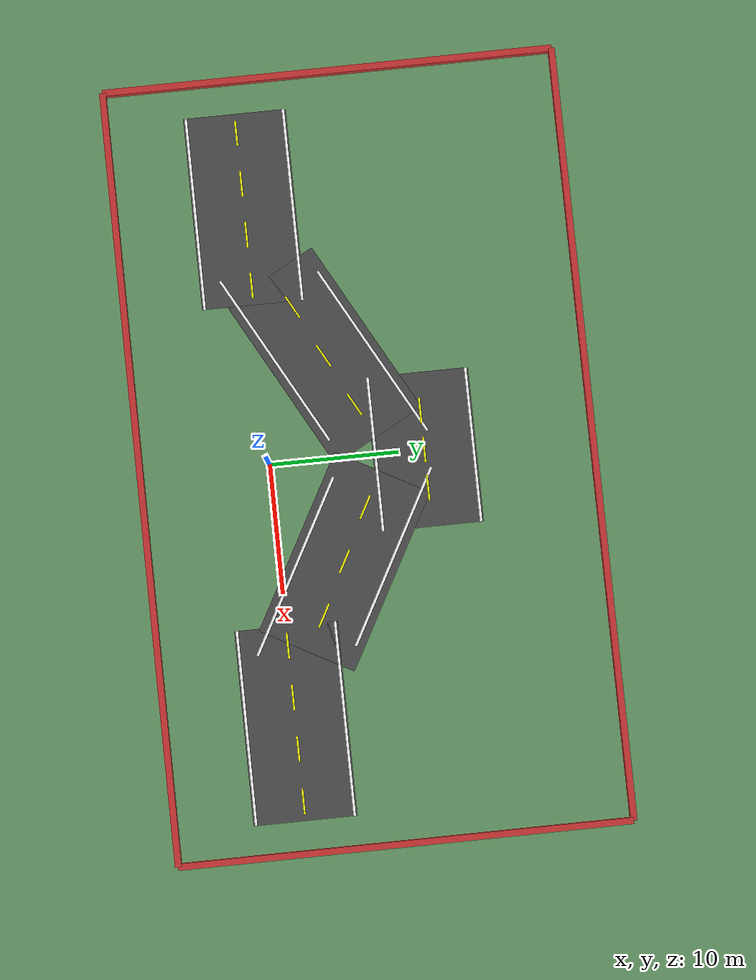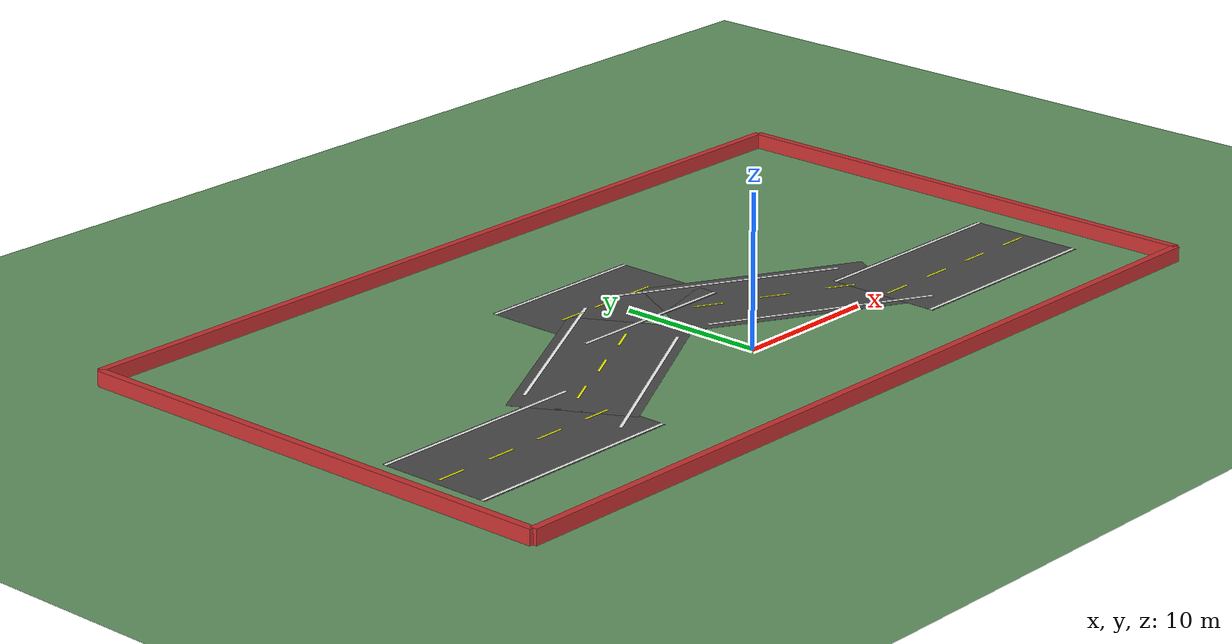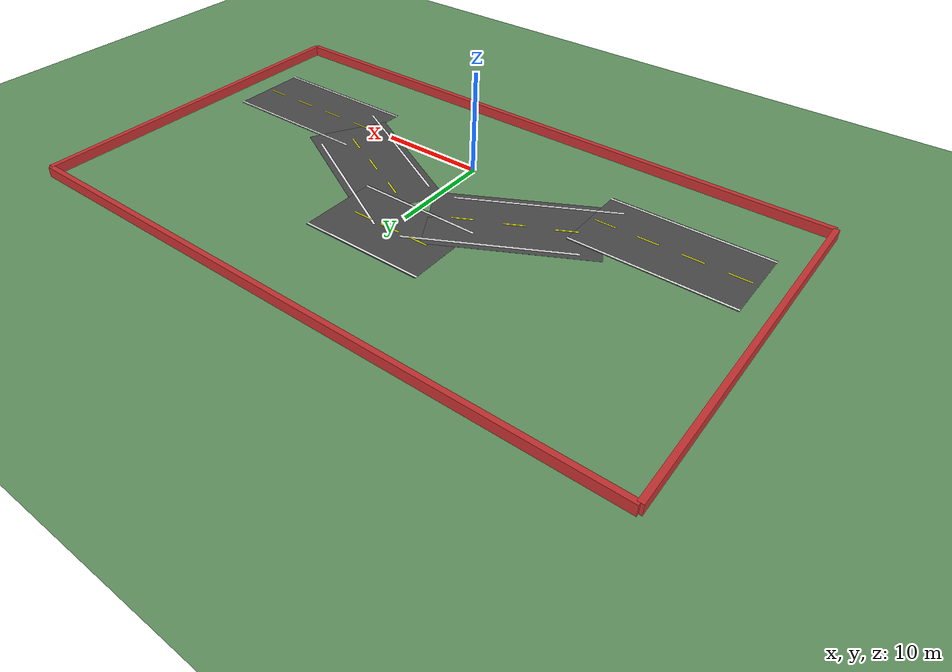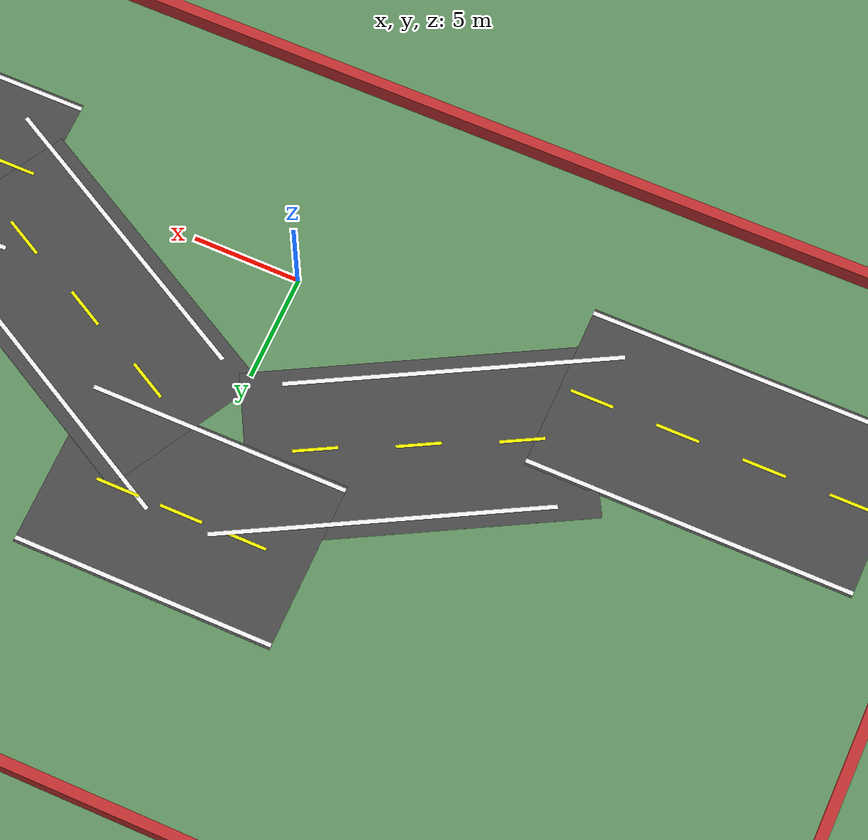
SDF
<?xml version="1.0" ?>
<sdf version="1.9">
  <world name="curved_track">

    <!-- Physics -->
    <physics name="1ms" type="ignored">
      <max_step_size>0.001</max_step_size>
      <real_time_factor>1.0</real_time_factor>
    </physics>

    <!-- Plugins -->
    <plugin
      filename="gz-sim-physics-system"
      name="gz::sim::systems::Physics">
    </plugin>
    <plugin
      filename="gz-sim-user-commands-system"
      name="gz::sim::systems::UserCommands">
    </plugin>
    <plugin
      filename="gz-sim-scene-broadcaster-system"
      name="gz::sim::systems::SceneBroadcaster">
    </plugin>
    <plugin
      filename="gz-sim-sensors-system"
      name="gz::sim::systems::Sensors">
      <render_engine>ogre2</render_engine>
    </plugin>

    <!-- Lighting -->
    <light type="directional" name="sun">
      <cast_shadows>true</cast_shadows>
      <pose>0 0 10 0 0 0</pose>
      <diffuse>0.8 0.8 0.8 1</diffuse>
      <specular>0.2 0.2 0.2 1</specular>
      <attenuation>
        <range>1000</range>
        <constant>0.9</constant>
        <linear>0.01</linear>
        <quadratic>0.001</quadratic>
      </attenuation>
      <direction>-0.5 0.1 -0.9</direction>
    </light>

    <!-- Ground Plane (grass) -->
    <model name="ground_plane">
      <static>true</static>
      <link name="link">
        <collision name="collision">
          <geometry>
            <plane>
              <normal>0 0 1</normal>
              <size>200 200</size>
            </plane>
          </geometry>
        </collision>
        <visual name="visual">
          <geometry>
            <plane>
              <normal>0 0 1</normal>
              <size>200 200</size>
            </plane>
          </geometry>
          <material>
            <ambient>0.3 0.5 0.3 1</ambient>
            <diffuse>0.4 0.6 0.4 1</diffuse>
            <specular>0.01 0.01 0.01 1</specular>
          </material>
        </visual>
      </link>
    </model>

    <!-- CURVED TRACK WITH S-BENDS   -->

    <!-- Segment 1: Straight section (entry) -->
    <model name="road_segment_1">
      <static>true</static>
      <pose>-20 0 0.01 0 0 0</pose>
      <link name="link">
        <visual name="visual">
          <geometry>
            <box>
              <size>15 8 0.01</size>
            </box>
          </geometry>
          <material>
            <ambient>0.2 0.2 0.2 1</ambient>
            <diffuse>0.3 0.3 0.3 1</diffuse>
            <specular>0.1 0.1 0.1 1</specular>
          </material>
        </visual>
      </link>
    </model>

    <!-- Segment 2: Left curve -->
    <model name="road_segment_2">
      <static>true</static>
      <pose>-8 5 0.01 0 0 0.5</pose>
      <link name="link">
        <visual name="visual">
          <geometry>
            <box>
              <size>15 8 0.01</size>
            </box>
          </geometry>
          <material>
            <ambient>0.2 0.2 0.2 1</ambient>
            <diffuse>0.3 0.3 0.3 1</diffuse>
            <specular>0.1 0.1 0.1 1</specular>
          </material>
        </visual>
      </link>
    </model>

    <!-- Segment 3: Transition section -->
    <model name="road_segment_3">
      <static>true</static>
      <pose>0 12 0.01 0 0 0</pose>
      <link name="link">
        <visual name="visual">
          <geometry>
            <box>
              <size>12 8 0.01</size>
            </box>
          </geometry>
          <material>
            <ambient>0.2 0.2 0.2 1</ambient>
            <diffuse>0.3 0.3 0.3 1</diffuse>
            <specular>0.1 0.1 0.1 1</specular>
          </material>
        </visual>
      </link>
    </model>

    <!-- Segment 4: Right curve -->
    <model name="road_segment_4">
      <static>true</static>
      <pose>8 5 0.01 0 0 -0.5</pose>
      <link name="link">
        <visual name="visual">
          <geometry>
            <box>
              <size>15 8 0.01</size>
            </box>
          </geometry>
          <material>
            <ambient>0.2 0.2 0.2 1</ambient>
            <diffuse>0.3 0.3 0.3 1</diffuse>
            <specular>0.1 0.1 0.1 1</specular>
          </material>
        </visual>
      </link>
    </model>

    <!-- Segment 5: Straight section (exit) -->
    <model name="road_segment_5">
      <static>true</static>
      <pose>20 0 0.01 0 0 0</pose>
      <link name="link">
        <visual name="visual">
          <geometry>
            <box>
              <size>15 8 0.01</size>
            </box>
          </geometry>
          <material>
            <ambient>0.2 0.2 0.2 1</ambient>
            <diffuse>0.3 0.3 0.3 1</diffuse>
            <specular>0.1 0.1 0.1 1</specular>
          </material>
        </visual>
      </link>
    </model>

    <!-- LANE MARKINGS - Segment 1   -->

    <!-- Left edge (white solid) -->
    <model name="lane_seg1_left">
      <static>true</static>
      <pose>-20 3.8 0.02 0 0 0</pose>
      <link name="link">
        <visual name="visual">
          <geometry>
            <box>
              <size>15 0.2 0.01</size>
            </box>
          </geometry>
          <material>
            <ambient>1 1 1 1</ambient>
            <diffuse>1 1 1 1</diffuse>
          </material>
        </visual>
      </link>
    </model>

    <!-- Right edge (white solid) -->
    <model name="lane_seg1_right">
      <static>true</static>
      <pose>-20 -3.8 0.02 0 0 0</pose>
      <link name="link">
        <visual name="visual">
          <geometry>
            <box>
              <size>15 0.2 0.01</size>
            </box>
          </geometry>
          <material>
            <ambient>1 1 1 1</ambient>
            <diffuse>1 1 1 1</diffuse>
          </material>
        </visual>
      </link>
    </model>

    <!-- Center dashed yellow lines -->
    <model name="lane_seg1_center_1">
      <static>true</static>
      <pose>-26 0 0.02 0 0 0</pose>
      <link name="link">
        <visual name="visual">
          <geometry>
            <box>
              <size>2 0.15 0.01</size>
            </box>
          </geometry>
          <material>
            <ambient>1 1 0 1</ambient>
            <diffuse>1 1 0 1</diffuse>
          </material>
        </visual>
      </link>
    </model>

    <model name="lane_seg1_center_2">
      <static>true</static>
      <pose>-22 0 0.02 0 0 0</pose>
      <link name="link">
        <visual name="visual">
          <geometry>
            <box>
              <size>2 0.15 0.01</size>
            </box>
          </geometry>
          <material>
            <ambient>1 1 0 1</ambient>
            <diffuse>1 1 0 1</diffuse>
          </material>
        </visual>
      </link>
    </model>

    <model name="lane_seg1_center_3">
      <static>true</static>
      <pose>-18 0 0.02 0 0 0</pose>
      <link name="link">
        <visual name="visual">
          <geometry>
            <box>
              <size>2 0.15 0.01</size>
            </box>
          </geometry>
          <material>
            <ambient>1 1 0 1</ambient>
            <diffuse>1 1 0 1</diffuse>
          </material>
        </visual>
      </link>
    </model>

    <model name="lane_seg1_center_4">
      <static>true</static>
      <pose>-14 0 0.02 0 0 0</pose>
      <link name="link">
        <visual name="visual">
          <geometry>
            <box>
              <size>2 0.15 0.01</size>
            </box>
          </geometry>
          <material>
            <ambient>1 1 0 1</ambient>
            <diffuse>1 1 0 1</diffuse>
          </material>
        </visual>
      </link>
    </model>

    <!-- LANE MARKINGS - Segment 2   -->
    <!-- (Left curve)                 -->

    <model name="lane_seg2_left">
      <static>true</static>
      <pose>-8 8.8 0.02 0 0 0.5</pose>
      <link name="link">
        <visual name="visual">
          <geometry>
            <box>
              <size>15 0.2 0.01</size>
            </box>
          </geometry>
          <material>
            <ambient>1 1 1 1</ambient>
            <diffuse>1 1 1 1</diffuse>
          </material>
        </visual>
      </link>
    </model>

    <model name="lane_seg2_right">
      <static>true</static>
      <pose>-8 1.2 0.02 0 0 0.5</pose>
      <link name="link">
        <visual name="visual">
          <geometry>
            <box>
              <size>15 0.2 0.01</size>
            </box>
          </geometry>
          <material>
            <ambient>1 1 1 1</ambient>
            <diffuse>1 1 1 1</diffuse>
          </material>
        </visual>
      </link>
    </model>

    <!-- Center markings for curve -->
    <model name="lane_seg2_center_1">
      <static>true</static>
      <pose>-12 3 0.02 0 0 0.5</pose>
      <link name="link">
        <visual name="visual">
          <geometry>
            <box>
              <size>2 0.15 0.01</size>
            </box>
          </geometry>
          <material>
            <ambient>1 1 0 1</ambient>
            <diffuse>1 1 0 1</diffuse>
          </material>
        </visual>
      </link>
    </model>

    <model name="lane_seg2_center_2">
      <static>true</static>
      <pose>-8 5 0.02 0 0 0.5</pose>
      <link name="link">
        <visual name="visual">
          <geometry>
            <box>
              <size>2 0.15 0.01</size>
            </box>
          </geometry>
          <material>
            <ambient>1 1 0 1</ambient>
            <diffuse>1 1 0 1</diffuse>
          </material>
        </visual>
      </link>
    </model>

    <model name="lane_seg2_center_3">
      <static>true</static>
      <pose>-4 7 0.02 0 0 0.5</pose>
      <link name="link">
        <visual name="visual">
          <geometry>
            <box>
              <size>2 0.15 0.01</size>
            </box>
          </geometry>
          <material>
            <ambient>1 1 0 1</ambient>
            <diffuse>1 1 0 1</diffuse>
          </material>
        </visual>
      </link>
    </model>

    <!-- LANE MARKINGS - Segment 3   -->
    <!-- (Transition)                 -->

    <model name="lane_seg3_left">
      <static>true</static>
      <pose>0 15.8 0.02 0 0 0</pose>
      <link name="link">
        <visual name="visual">
          <geometry>
            <box>
              <size>12 0.2 0.01</size>
            </box>
          </geometry>
          <material>
            <ambient>1 1 1 1</ambient>
            <diffuse>1 1 1 1</diffuse>
          </material>
        </visual>
      </link>
    </model>

    <model name="lane_seg3_right">
      <static>true</static>
      <pose>0 8.2 0.02 0 0 0</pose>
      <link name="link">
        <visual name="visual">
          <geometry>
            <box>
              <size>12 0.2 0.01</size>
            </box>
          </geometry>
          <material>
            <ambient>1 1 1 1</ambient>
            <diffuse>1 1 1 1</diffuse>
          </material>
        </visual>
      </link>
    </model>

    <model name="lane_seg3_center_1">
      <static>true</static>
      <pose>-3 12 0.02 0 0 0</pose>
      <link name="link">
        <visual name="visual">
          <geometry>
            <box>
              <size>2 0.15 0.01</size>
            </box>
          </geometry>
          <material>
            <ambient>1 1 0 1</ambient>
            <diffuse>1 1 0 1</diffuse>
          </material>
        </visual>
      </link>
    </model>

    <model name="lane_seg3_center_2">
      <static>true</static>
      <pose>0 12 0.02 0 0 0</pose>
      <link name="link">
        <visual name="visual">
          <geometry>
            <box>
              <size>2 0.15 0.01</size>
            </box>
          </geometry>
          <material>
            <ambient>1 1 0 1</ambient>
            <diffuse>1 1 0 1</diffuse>
          </material>
        </visual>
      </link>
    </model>

    <model name="lane_seg3_center_3">
      <static>true</static>
      <pose>3 12 0.02 0 0 0</pose>
      <link name="link">
        <visual name="visual">
          <geometry>
            <box>
              <size>2 0.15 0.01</size>
            </box>
          </geometry>
          <material>
            <ambient>1 1 0 1</ambient>
            <diffuse>1 1 0 1</diffuse>
          </material>
        </visual>
      </link>
    </model>

    <!-- LANE MARKINGS - Segment 4   -->
    <!-- (Right curve)                -->

    <model name="lane_seg4_left">
      <static>true</static>
      <pose>8 8.8 0.02 0 0 -0.5</pose>
      <link name="link">
        <visual name="visual">
          <geometry>
            <box>
              <size>15 0.2 0.01</size>
            </box>
          </geometry>
          <material>
            <ambient>1 1 1 1</ambient>
            <diffuse>1 1 1 1</diffuse>
          </material>
        </visual>
      </link>
    </model>

    <model name="lane_seg4_right">
      <static>true</static>
      <pose>8 1.2 0.02 0 0 -0.5</pose>
      <link name="link">
        <visual name="visual">
          <geometry>
            <box>
              <size>15 0.2 0.01</size>
            </box>
          </geometry>
          <material>
            <ambient>1 1 1 1</ambient>
            <diffuse>1 1 1 1</diffuse>
          </material>
        </visual>
      </link>
    </model>

    <model name="lane_seg4_center_1">
      <static>true</static>
      <pose>4 7 0.02 0 0 -0.5</pose>
      <link name="link">
        <visual name="visual">
          <geometry>
            <box>
              <size>2 0.15 0.01</size>
            </box>
          </geometry>
          <material>
            <ambient>1 1 0 1</ambient>
            <diffuse>1 1 0 1</diffuse>
          </material>
        </visual>
      </link>
    </model>

    <model name="lane_seg4_center_2">
      <static>true</static>
      <pose>8 5 0.02 0 0 -0.5</pose>
      <link name="link">
        <visual name="visual">
          <geometry>
            <box>
              <size>2 0.15 0.01</size>
            </box>
          </geometry>
          <material>
            <ambient>1 1 0 1</ambient>
            <diffuse>1 1 0 1</diffuse>
          </material>
        </visual>
      </link>
    </model>

    <model name="lane_seg4_center_3">
      <static>true</static>
      <pose>12 3 0.02 0 0 -0.5</pose>
      <link name="link">
        <visual name="visual">
          <geometry>
            <box>
              <size>2 0.15 0.01</size>
            </box>
          </geometry>
          <material>
            <ambient>1 1 0 1</ambient>
            <diffuse>1 1 0 1</diffuse>
          </material>
        </visual>
      </link>
    </model>

    <!-- LANE MARKINGS - Segment 5   -->
    <!-- (Exit straight)              -->

    <model name="lane_seg5_left">
      <static>true</static>
      <pose>20 3.8 0.02 0 0 0</pose>
      <link name="link">
        <visual name="visual">
          <geometry>
            <box>
              <size>15 0.2 0.01</size>
            </box>
          </geometry>
          <material>
            <ambient>1 1 1 1</ambient>
            <diffuse>1 1 1 1</diffuse>
          </material>
        </visual>
      </link>
    </model>

    <model name="lane_seg5_right">
      <static>true</static>
      <pose>20 -3.8 0.02 0 0 0</pose>
      <link name="link">
        <visual name="visual">
          <geometry>
            <box>
              <size>15 0.2 0.01</size>
            </box>
          </geometry>
          <material>
            <ambient>1 1 1 1</ambient>
            <diffuse>1 1 1 1</diffuse>
          </material>
        </visual>
      </link>
    </model>

    <model name="lane_seg5_center_1">
      <static>true</static>
      <pose>14 0 0.02 0 0 0</pose>
      <link name="link">
        <visual name="visual">
          <geometry>
            <box>
              <size>2 0.15 0.01</size>
            </box>
          </geometry>
          <material>
            <ambient>1 1 0 1</ambient>
            <diffuse>1 1 0 1</diffuse>
          </material>
        </visual>
      </link>
    </model>

    <model name="lane_seg5_center_2">
      <static>true</static>
      <pose>18 0 0.02 0 0 0</pose>
      <link name="link">
        <visual name="visual">
          <geometry>
            <box>
              <size>2 0.15 0.01</size>
            </box>
          </geometry>
          <material>
            <ambient>1 1 0 1</ambient>
            <diffuse>1 1 0 1</diffuse>
          </material>
        </visual>
      </link>
    </model>

    <model name="lane_seg5_center_3">
      <static>true</static>
      <pose>22 0 0.02 0 0 0</pose>
      <link name="link">
        <visual name="visual">
          <geometry>
            <box>
              <size>2 0.15 0.01</size>
            </box>
          </geometry>
          <material>
            <ambient>1 1 0 1</ambient>
            <diffuse>1 1 0 1</diffuse>
          </material>
        </visual>
      </link>
    </model>

    <model name="lane_seg5_center_4">
      <static>true</static>
      <pose>26 0 0.02 0 0 0</pose>
      <link name="link">
        <visual name="visual">
          <geometry>
            <box>
              <size>2 0.15 0.01</size>
            </box>
          </geometry>
          <material>
            <ambient>1 1 0 1</ambient>
            <diffuse>1 1 0 1</diffuse>
          </material>
        </visual>
      </link>
    </model>

    <!-- Boundary walls for safety -->
    <model name="wall_north">
      <static>true</static>
      <pose>0 25 0.5 0 0 0</pose>
      <link name="link">
        <collision name="collision">
          <geometry>
            <box>
              <size>60 0.5 1</size>
            </box>
          </geometry>
        </collision>
        <visual name="visual">
          <geometry>
            <box>
              <size>60 0.5 1</size>
            </box>
          </geometry>
          <material>
            <ambient>0.8 0.2 0.2 1</ambient>
            <diffuse>0.8 0.2 0.2 1</diffuse>
          </material>
        </visual>
      </link>
    </model>

    <model name="wall_south">
      <static>true</static>
      <pose>0 -10 0.5 0 0 0</pose>
      <link name="link">
        <collision name="collision">
          <geometry>
            <box>
              <size>60 0.5 1</size>
            </box>
          </geometry>
        </collision>
        <visual name="visual">
          <geometry>
            <box>
              <size>60 0.5 1</size>
            </box>
          </geometry>
          <material>
            <ambient>0.8 0.2 0.2 1</ambient>
            <diffuse>0.8 0.2 0.2 1</diffuse>
          </material>
        </visual>
      </link>
    </model>

    <model name="wall_east">
      <static>true</static>
      <pose>30 7.5 0.5 0 0 0</pose>
      <link name="link">
        <collision name="collision">
          <geometry>
            <box>
              <size>0.5 35 1</size>
            </box>
          </geometry>
        </collision>
        <visual name="visual">
          <geometry>
            <box>
              <size>0.5 35 1</size>
            </box>
          </geometry>
          <material>
            <ambient>0.8 0.2 0.2 1</ambient>
            <diffuse>0.8 0.2 0.2 1</diffuse>
          </material>
        </visual>
      </link>
    </model>

    <model name="wall_west">
      <static>true</static>
      <pose>-30 7.5 0.5 0 0 0</pose>
      <link name="link">
        <collision name="collision">
          <geometry>
            <box>
              <size>0.5 35 1</size>
            </box>
          </geometry>
        </collision>
        <visual name="visual">
          <geometry>
            <box>
              <size>0.5 35 1</size>
            </box>
          </geometry>
          <material>
            <ambient>0.8 0.2 0.2 1</ambient>
            <diffuse>0.8 0.2 0.2 1</diffuse>
          </material>
        </visual>
      </link>
    </model>

  </world>
</sdf>
